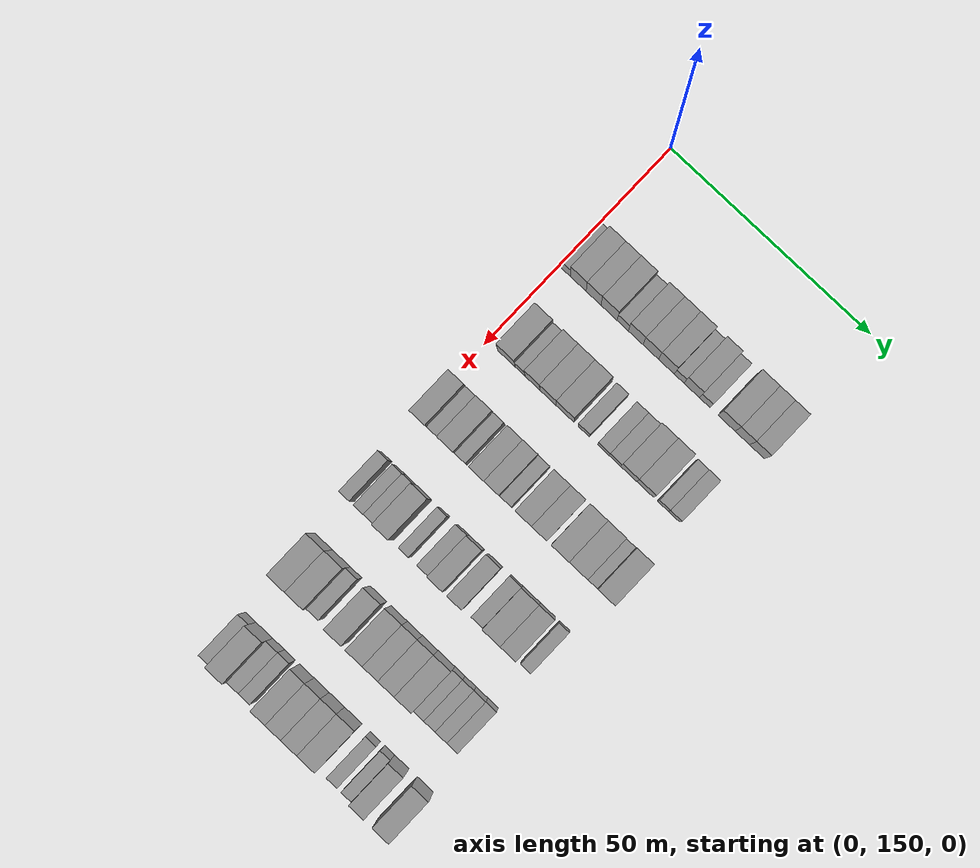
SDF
<sdf version="1.6">
 <world name="default">
  <model name="building_119">
   <static>1</static>
   <pose>25.0000 151.5702 0 0.000000 0.000000 0.000000</pose>
   <link name="link">
    <pose>0 0 3.00 0 0 0</pose>
    <collision name="collision"><geometry><box><size>10.0000 2.5258 6.0000</size></box></geometry></collision>
    <visual name="visual">
     <cast_shadows>0</cast_shadows>
     <geometry><box><size>10.0000 2.5258 6.0000</size></box></geometry>
     <material>
      <script>
       <uri>model://grey_wall/materials/scripts</uri>
       <uri>model://grey_wall/materials/textures</uri>
       <name>vrc/grey_wall</name>
      </script>
     </material>
    </visual>
   </link>
  </model>
  <model name="building_120">
   <static>1</static>
   <pose>25.0000 154.8257 0 0.000000 0.000000 0.000000</pose>
   <link name="link">
    <pose>0 0 4.50 0 0 0</pose>
    <collision name="collision"><geometry><box><size>10.0000 3.9853 9.0000</size></box></geometry></collision>
    <visual name="visual">
     <cast_shadows>0</cast_shadows>
     <geometry><box><size>10.0000 3.9853 9.0000</size></box></geometry>
     <material>
      <script>
       <uri>model://grey_wall/materials/scripts</uri>
       <uri>model://grey_wall/materials/textures</uri>
       <name>vrc/grey_wall</name>
      </script>
     </material>
    </visual>
   </link>
  </model>
  <model name="building_121">
   <static>1</static>
   <pose>25.0000 158.6795 0 0.000000 0.000000 0.000000</pose>
   <link name="link">
    <pose>0 0 4.50 0 0 0</pose>
    <collision name="collision"><geometry><box><size>10.0000 3.7222 9.0000</size></box></geometry></collision>
    <visual name="visual">
     <cast_shadows>0</cast_shadows>
     <geometry><box><size>10.0000 3.7222 9.0000</size></box></geometry>
     <material>
      <script>
       <uri>model://grey_wall/materials/scripts</uri>
       <uri>model://grey_wall/materials/textures</uri>
       <name>vrc/grey_wall</name>
      </script>
     </material>
    </visual>
   </link>
  </model>
  <model name="building_122">
   <static>1</static>
   <pose>25.0000 162.5644 0 0.000000 0.000000 0.000000</pose>
   <link name="link">
    <pose>0 0 4.50 0 0 0</pose>
    <collision name="collision"><geometry><box><size>10.0000 4.0477 9.0000</size></box></geometry></collision>
    <visual name="visual">
     <cast_shadows>0</cast_shadows>
     <geometry><box><size>10.0000 4.0477 9.0000</size></box></geometry>
     <material>
      <script>
       <uri>model://grey_wall/materials/scripts</uri>
       <uri>model://grey_wall/materials/textures</uri>
       <name>vrc/grey_wall</name>
      </script>
     </material>
    </visual>
   </link>
  </model>
  <model name="building_123">
   <static>1</static>
   <pose>25.0000 166.0023 0 0.000000 0.000000 0.000000</pose>
   <link name="link">
    <pose>0 0 3.00 0 0 0</pose>
    <collision name="collision"><geometry><box><size>10.0000 2.8281 6.0000</size></box></geometry></collision>
    <visual name="visual">
     <cast_shadows>0</cast_shadows>
     <geometry><box><size>10.0000 2.8281 6.0000</size></box></geometry>
     <material>
      <script>
       <uri>model://grey_wall/materials/scripts</uri>
       <uri>model://grey_wall/materials/textures</uri>
       <name>vrc/grey_wall</name>
      </script>
     </material>
    </visual>
   </link>
  </model>
  <model name="building_124">
   <static>1</static>
   <pose>25.0000 169.2462 0 0.000000 0.000000 0.000000</pose>
   <link name="link">
    <pose>0 0 4.50 0 0 0</pose>
    <collision name="collision"><geometry><box><size>10.0000 3.6597 9.0000</size></box></geometry></collision>
    <visual name="visual">
     <cast_shadows>0</cast_shadows>
     <geometry><box><size>10.0000 3.6597 9.0000</size></box></geometry>
     <material>
      <script>
       <uri>model://grey_wall/materials/scripts</uri>
       <uri>model://grey_wall/materials/textures</uri>
       <name>vrc/grey_wall</name>
      </script>
     </material>
    </visual>
   </link>
  </model>
  <model name="building_125">
   <static>1</static>
   <pose>25.0000 173.0243 0 0.000000 0.000000 0.000000</pose>
   <link name="link">
    <pose>0 0 4.50 0 0 0</pose>
    <collision name="collision"><geometry><box><size>10.0000 3.8966 9.0000</size></box></geometry></collision>
    <visual name="visual">
     <cast_shadows>0</cast_shadows>
     <geometry><box><size>10.0000 3.8966 9.0000</size></box></geometry>
     <material>
      <script>
       <uri>model://grey_wall/materials/scripts</uri>
       <uri>model://grey_wall/materials/textures</uri>
       <name>vrc/grey_wall</name>
      </script>
     </material>
    </visual>
   </link>
  </model>
  <model name="building_126">
   <static>1</static>
   <pose>25.0000 176.9497 0 0.000000 0.000000 0.000000</pose>
   <link name="link">
    <pose>0 0 4.50 0 0 0</pose>
    <collision name="collision"><geometry><box><size>10.0000 3.9542 9.0000</size></box></geometry></collision>
    <visual name="visual">
     <cast_shadows>0</cast_shadows>
     <geometry><box><size>10.0000 3.9542 9.0000</size></box></geometry>
     <material>
      <script>
       <uri>model://grey_wall/materials/scripts</uri>
       <uri>model://grey_wall/materials/textures</uri>
       <name>vrc/grey_wall</name>
      </script>
     </material>
    </visual>
   </link>
  </model>
  <model name="building_127">
   <static>1</static>
   <pose>25.0000 180.1447 0 0.000000 0.000000 0.000000</pose>
   <link name="link">
    <pose>0 0 3.00 0 0 0</pose>
    <collision name="collision"><geometry><box><size>10.0000 2.4359 6.0000</size></box></geometry></collision>
    <visual name="visual">
     <cast_shadows>0</cast_shadows>
     <geometry><box><size>10.0000 2.4359 6.0000</size></box></geometry>
     <material>
      <script>
       <uri>model://grey_wall/materials/scripts</uri>
       <uri>model://grey_wall/materials/textures</uri>
       <name>vrc/grey_wall</name>
      </script>
     </material>
    </visual>
   </link>
  </model>
  <model name="building_128">
   <static>1</static>
   <pose>25.0000 183.2692 0 0.000000 0.000000 0.000000</pose>
   <link name="link">
    <pose>0 0 4.50 0 0 0</pose>
    <collision name="collision"><geometry><box><size>10.0000 3.8131 9.0000</size></box></geometry></collision>
    <visual name="visual">
     <cast_shadows>0</cast_shadows>
     <geometry><box><size>10.0000 3.8131 9.0000</size></box></geometry>
     <material>
      <script>
       <uri>model://grey_wall/materials/scripts</uri>
       <uri>model://grey_wall/materials/textures</uri>
       <name>vrc/grey_wall</name>
      </script>
     </material>
    </visual>
   </link>
  </model>
  <model name="building_129">
   <static>1</static>
   <pose>25.0000 186.5135 0 0.000000 0.000000 0.000000</pose>
   <link name="link">
    <pose>0 0 3.00 0 0 0</pose>
    <collision name="collision"><geometry><box><size>10.0000 2.6755 6.0000</size></box></geometry></collision>
    <visual name="visual">
     <cast_shadows>0</cast_shadows>
     <geometry><box><size>10.0000 2.6755 6.0000</size></box></geometry>
     <material>
      <script>
       <uri>model://grey_wall/materials/scripts</uri>
       <uri>model://grey_wall/materials/textures</uri>
       <name>vrc/grey_wall</name>
      </script>
     </material>
    </visual>
   </link>
  </model>
  <model name="building_130">
   <static>1</static>
   <pose>25.0000 191.9704 0 0.000000 0.000000 0.000000</pose>
   <link name="link">
    <pose>0 0 4.50 0 0 0</pose>
    <collision name="collision"><geometry><box><size>10.0000 4.2382 9.0000</size></box></geometry></collision>
    <visual name="visual">
     <cast_shadows>0</cast_shadows>
     <geometry><box><size>10.0000 4.2382 9.0000</size></box></geometry>
     <material>
      <script>
       <uri>model://grey_wall/materials/scripts</uri>
       <uri>model://grey_wall/materials/textures</uri>
       <name>vrc/grey_wall</name>
      </script>
     </material>
    </visual>
   </link>
  </model>
  <model name="building_131">
   <static>1</static>
   <pose>25.0000 195.9133 0 0.000000 0.000000 0.000000</pose>
   <link name="link">
    <pose>0 0 4.50 0 0 0</pose>
    <collision name="collision"><geometry><box><size>10.0000 3.6477 9.0000</size></box></geometry></collision>
    <visual name="visual">
     <cast_shadows>0</cast_shadows>
     <geometry><box><size>10.0000 3.6477 9.0000</size></box></geometry>
     <material>
      <script>
       <uri>model://grey_wall/materials/scripts</uri>
       <uri>model://grey_wall/materials/textures</uri>
       <name>vrc/grey_wall</name>
      </script>
     </material>
    </visual>
   </link>
  </model>
  <model name="building_132">
   <static>1</static>
   <pose>25.0000 199.5821 0 0.000000 0.000000 0.000000</pose>
   <link name="link">
    <pose>0 0 4.50 0 0 0</pose>
    <collision name="collision"><geometry><box><size>10.0000 3.6898 9.0000</size></box></geometry></collision>
    <visual name="visual">
     <cast_shadows>0</cast_shadows>
     <geometry><box><size>10.0000 3.6898 9.0000</size></box></geometry>
     <material>
      <script>
       <uri>model://grey_wall/materials/scripts</uri>
       <uri>model://grey_wall/materials/textures</uri>
       <name>vrc/grey_wall</name>
      </script>
     </material>
    </visual>
   </link>
  </model>
  <model name="building_291">
   <static>1</static>
   <pose>44.0000 154.8033 0 0.000000 0.000000 0.000000</pose>
   <link name="link">
    <pose>0 0 4.50 0 0 0</pose>
    <collision name="collision"><geometry><box><size>10.0000 4.3918 9.0000</size></box></geometry></collision>
    <visual name="visual">
     <cast_shadows>0</cast_shadows>
     <geometry><box><size>10.0000 4.3918 9.0000</size></box></geometry>
     <material>
      <script>
       <uri>model://grey_wall/materials/scripts</uri>
       <uri>model://grey_wall/materials/textures</uri>
       <name>vrc/grey_wall</name>
      </script>
     </material>
    </visual>
   </link>
  </model>
  <model name="building_292">
   <static>1</static>
   <pose>44.0000 158.2389 0 0.000000 0.000000 0.000000</pose>
   <link name="link">
    <pose>0 0 3.00 0 0 0</pose>
    <collision name="collision"><geometry><box><size>10.0000 2.4793 6.0000</size></box></geometry></collision>
    <visual name="visual">
     <cast_shadows>0</cast_shadows>
     <geometry><box><size>10.0000 2.4793 6.0000</size></box></geometry>
     <material>
      <script>
       <uri>model://grey_wall/materials/scripts</uri>
       <uri>model://grey_wall/materials/textures</uri>
       <name>vrc/grey_wall</name>
      </script>
     </material>
    </visual>
   </link>
  </model>
  <model name="building_293">
   <static>1</static>
   <pose>44.0000 161.3177 0 0.000000 0.000000 0.000000</pose>
   <link name="link">
    <pose>0 0 4.50 0 0 0</pose>
    <collision name="collision"><geometry><box><size>10.0000 3.6782 9.0000</size></box></geometry></collision>
    <visual name="visual">
     <cast_shadows>0</cast_shadows>
     <geometry><box><size>10.0000 3.6782 9.0000</size></box></geometry>
     <material>
      <script>
       <uri>model://grey_wall/materials/scripts</uri>
       <uri>model://grey_wall/materials/textures</uri>
       <name>vrc/grey_wall</name>
      </script>
     </material>
    </visual>
   </link>
  </model>
  <model name="building_294">
   <static>1</static>
   <pose>44.0000 165.2141 0 0.000000 0.000000 0.000000</pose>
   <link name="link">
    <pose>0 0 4.50 0 0 0</pose>
    <collision name="collision"><geometry><box><size>10.0000 4.1147 9.0000</size></box></geometry></collision>
    <visual name="visual">
     <cast_shadows>0</cast_shadows>
     <geometry><box><size>10.0000 4.1147 9.0000</size></box></geometry>
     <material>
      <script>
       <uri>model://grey_wall/materials/scripts</uri>
       <uri>model://grey_wall/materials/textures</uri>
       <name>vrc/grey_wall</name>
      </script>
     </material>
    </visual>
   </link>
  </model>
  <model name="building_295">
   <static>1</static>
   <pose>44.0000 169.4779 0 0.000000 0.000000 0.000000</pose>
   <link name="link">
    <pose>0 0 4.50 0 0 0</pose>
    <collision name="collision"><geometry><box><size>10.0000 4.4129 9.0000</size></box></geometry></collision>
    <visual name="visual">
     <cast_shadows>0</cast_shadows>
     <geometry><box><size>10.0000 4.4129 9.0000</size></box></geometry>
     <material>
      <script>
       <uri>model://grey_wall/materials/scripts</uri>
       <uri>model://grey_wall/materials/textures</uri>
       <name>vrc/grey_wall</name>
      </script>
     </material>
    </visual>
   </link>
  </model>
  <model name="building_296">
   <static>1</static>
   <pose>44.0000 174.1493 0 0.000000 0.000000 0.000000</pose>
   <link name="link">
    <pose>0 0 3.00 0 0 0</pose>
    <collision name="collision"><geometry><box><size>10.0000 2.9297 6.0000</size></box></geometry></collision>
    <visual name="visual">
     <cast_shadows>0</cast_shadows>
     <geometry><box><size>10.0000 2.9297 6.0000</size></box></geometry>
     <material>
      <script>
       <uri>model://grey_wall/materials/scripts</uri>
       <uri>model://grey_wall/materials/textures</uri>
       <name>vrc/grey_wall</name>
      </script>
     </material>
    </visual>
   </link>
  </model>
  <model name="building_297">
   <static>1</static>
   <pose>44.0000 179.0630 0 0.000000 0.000000 0.000000</pose>
   <link name="link">
    <pose>0 0 3.00 0 0 0</pose>
    <collision name="collision"><geometry><box><size>10.0000 2.8978 6.0000</size></box></geometry></collision>
    <visual name="visual">
     <cast_shadows>0</cast_shadows>
     <geometry><box><size>10.0000 2.8978 6.0000</size></box></geometry>
     <material>
      <script>
       <uri>model://grey_wall/materials/scripts</uri>
       <uri>model://grey_wall/materials/textures</uri>
       <name>vrc/grey_wall</name>
      </script>
     </material>
    </visual>
   </link>
  </model>
  <model name="building_298">
   <static>1</static>
   <pose>44.0000 181.9744 0 0.000000 0.000000 0.000000</pose>
   <link name="link">
    <pose>0 0 3.00 0 0 0</pose>
    <collision name="collision"><geometry><box><size>10.0000 2.9251 6.0000</size></box></geometry></collision>
    <visual name="visual">
     <cast_shadows>0</cast_shadows>
     <geometry><box><size>10.0000 2.9251 6.0000</size></box></geometry>
     <material>
      <script>
       <uri>model://grey_wall/materials/scripts</uri>
       <uri>model://grey_wall/materials/textures</uri>
       <name>vrc/grey_wall</name>
      </script>
     </material>
    </visual>
   </link>
  </model>
  <model name="building_299">
   <static>1</static>
   <pose>44.0000 185.4060 0 0.000000 0.000000 0.000000</pose>
   <link name="link">
    <pose>0 0 4.50 0 0 0</pose>
    <collision name="collision"><geometry><box><size>10.0000 3.9381 9.0000</size></box></geometry></collision>
    <visual name="visual">
     <cast_shadows>0</cast_shadows>
     <geometry><box><size>10.0000 3.9381 9.0000</size></box></geometry>
     <material>
      <script>
       <uri>model://grey_wall/materials/scripts</uri>
       <uri>model://grey_wall/materials/textures</uri>
       <name>vrc/grey_wall</name>
      </script>
     </material>
    </visual>
   </link>
  </model>
  <model name="building_300">
   <static>1</static>
   <pose>44.0000 189.4627 0 0.000000 0.000000 0.000000</pose>
   <link name="link">
    <pose>0 0 4.50 0 0 0</pose>
    <collision name="collision"><geometry><box><size>10.0000 4.1751 9.0000</size></box></geometry></collision>
    <visual name="visual">
     <cast_shadows>0</cast_shadows>
     <geometry><box><size>10.0000 4.1751 9.0000</size></box></geometry>
     <material>
      <script>
       <uri>model://grey_wall/materials/scripts</uri>
       <uri>model://grey_wall/materials/textures</uri>
       <name>vrc/grey_wall</name>
      </script>
     </material>
    </visual>
   </link>
  </model>
  <model name="building_301">
   <static>1</static>
   <pose>44.0000 193.8861 0 0.000000 0.000000 0.000000</pose>
   <link name="link">
    <pose>0 0 3.00 0 0 0</pose>
    <collision name="collision"><geometry><box><size>10.0000 2.6716 6.0000</size></box></geometry></collision>
    <visual name="visual">
     <cast_shadows>0</cast_shadows>
     <geometry><box><size>10.0000 2.6716 6.0000</size></box></geometry>
     <material>
      <script>
       <uri>model://grey_wall/materials/scripts</uri>
       <uri>model://grey_wall/materials/textures</uri>
       <name>vrc/grey_wall</name>
      </script>
     </material>
    </visual>
   </link>
  </model>
  <model name="building_302">
   <static>1</static>
   <pose>44.0000 196.6618 0 0.000000 0.000000 0.000000</pose>
   <link name="link">
    <pose>0 0 3.00 0 0 0</pose>
    <collision name="collision"><geometry><box><size>10.0000 2.8798 6.0000</size></box></geometry></collision>
    <visual name="visual">
     <cast_shadows>0</cast_shadows>
     <geometry><box><size>10.0000 2.8798 6.0000</size></box></geometry>
     <material>
      <script>
       <uri>model://grey_wall/materials/scripts</uri>
       <uri>model://grey_wall/materials/textures</uri>
       <name>vrc/grey_wall</name>
      </script>
     </material>
    </visual>
   </link>
  </model>
  <model name="building_473">
   <static>1</static>
   <pose>63.0000 151.5348 0 0.000000 0.000000 0.000000</pose>
   <link name="link">
    <pose>0 0 4.50 0 0 0</pose>
    <collision name="collision"><geometry><box><size>10.0000 3.8464 9.0000</size></box></geometry></collision>
    <visual name="visual">
     <cast_shadows>0</cast_shadows>
     <geometry><box><size>10.0000 3.8464 9.0000</size></box></geometry>
     <material>
      <script>
       <uri>model://grey_wall/materials/scripts</uri>
       <uri>model://grey_wall/materials/textures</uri>
       <name>vrc/grey_wall</name>
      </script>
     </material>
    </visual>
   </link>
  </model>
  <model name="building_474">
   <static>1</static>
   <pose>63.0000 154.8927 0 0.000000 0.000000 0.000000</pose>
   <link name="link">
    <pose>0 0 3.00 0 0 0</pose>
    <collision name="collision"><geometry><box><size>10.0000 2.8694 6.0000</size></box></geometry></collision>
    <visual name="visual">
     <cast_shadows>0</cast_shadows>
     <geometry><box><size>10.0000 2.8694 6.0000</size></box></geometry>
     <material>
      <script>
       <uri>model://grey_wall/materials/scripts</uri>
       <uri>model://grey_wall/materials/textures</uri>
       <name>vrc/grey_wall</name>
      </script>
     </material>
    </visual>
   </link>
  </model>
  <model name="building_475">
   <static>1</static>
   <pose>63.0000 158.3019 0 0.000000 0.000000 0.000000</pose>
   <link name="link">
    <pose>0 0 4.50 0 0 0</pose>
    <collision name="collision"><geometry><box><size>10.0000 3.9490 9.0000</size></box></geometry></collision>
    <visual name="visual">
     <cast_shadows>0</cast_shadows>
     <geometry><box><size>10.0000 3.9490 9.0000</size></box></geometry>
     <material>
      <script>
       <uri>model://grey_wall/materials/scripts</uri>
       <uri>model://grey_wall/materials/textures</uri>
       <name>vrc/grey_wall</name>
      </script>
     </material>
    </visual>
   </link>
  </model>
  <model name="building_476">
   <static>1</static>
   <pose>63.0000 161.6331 0 0.000000 0.000000 0.000000</pose>
   <link name="link">
    <pose>0 0 3.00 0 0 0</pose>
    <collision name="collision"><geometry><box><size>10.0000 2.7133 6.0000</size></box></geometry></collision>
    <visual name="visual">
     <cast_shadows>0</cast_shadows>
     <geometry><box><size>10.0000 2.7133 6.0000</size></box></geometry>
     <material>
      <script>
       <uri>model://grey_wall/materials/scripts</uri>
       <uri>model://grey_wall/materials/textures</uri>
       <name>vrc/grey_wall</name>
      </script>
     </material>
    </visual>
   </link>
  </model>
  <model name="building_477">
   <static>1</static>
   <pose>63.0000 165.8572 0 0.000000 0.000000 0.000000</pose>
   <link name="link">
    <pose>0 0 4.50 0 0 0</pose>
    <collision name="collision"><geometry><box><size>10.0000 3.7349 9.0000</size></box></geometry></collision>
    <visual name="visual">
     <cast_shadows>0</cast_shadows>
     <geometry><box><size>10.0000 3.7349 9.0000</size></box></geometry>
     <material>
      <script>
       <uri>model://grey_wall/materials/scripts</uri>
       <uri>model://grey_wall/materials/textures</uri>
       <name>vrc/grey_wall</name>
      </script>
     </material>
    </visual>
   </link>
  </model>
  <model name="building_478">
   <static>1</static>
   <pose>63.0000 169.5671 0 0.000000 0.000000 0.000000</pose>
   <link name="link">
    <pose>0 0 4.50 0 0 0</pose>
    <collision name="collision"><geometry><box><size>10.0000 3.6849 9.0000</size></box></geometry></collision>
    <visual name="visual">
     <cast_shadows>0</cast_shadows>
     <geometry><box><size>10.0000 3.6849 9.0000</size></box></geometry>
     <material>
      <script>
       <uri>model://grey_wall/materials/scripts</uri>
       <uri>model://grey_wall/materials/textures</uri>
       <name>vrc/grey_wall</name>
      </script>
     </material>
    </visual>
   </link>
  </model>
  <model name="building_479">
   <static>1</static>
   <pose>63.0000 172.8339 0 0.000000 0.000000 0.000000</pose>
   <link name="link">
    <pose>0 0 3.00 0 0 0</pose>
    <collision name="collision"><geometry><box><size>10.0000 2.8489 6.0000</size></box></geometry></collision>
    <visual name="visual">
     <cast_shadows>0</cast_shadows>
     <geometry><box><size>10.0000 2.8489 6.0000</size></box></geometry>
     <material>
      <script>
       <uri>model://grey_wall/materials/scripts</uri>
       <uri>model://grey_wall/materials/textures</uri>
       <name>vrc/grey_wall</name>
      </script>
     </material>
    </visual>
   </link>
  </model>
  <model name="building_480">
   <static>1</static>
   <pose>63.0000 177.2797 0 0.000000 0.000000 0.000000</pose>
   <link name="link">
    <pose>0 0 4.50 0 0 0</pose>
    <collision name="collision"><geometry><box><size>10.0000 4.0426 9.0000</size></box></geometry></collision>
    <visual name="visual">
     <cast_shadows>0</cast_shadows>
     <geometry><box><size>10.0000 4.0426 9.0000</size></box></geometry>
     <material>
      <script>
       <uri>model://grey_wall/materials/scripts</uri>
       <uri>model://grey_wall/materials/textures</uri>
       <name>vrc/grey_wall</name>
      </script>
     </material>
    </visual>
   </link>
  </model>
  <model name="building_481">
   <static>1</static>
   <pose>63.0000 181.1511 0 0.000000 0.000000 0.000000</pose>
   <link name="link">
    <pose>0 0 4.50 0 0 0</pose>
    <collision name="collision"><geometry><box><size>10.0000 3.7003 9.0000</size></box></geometry></collision>
    <visual name="visual">
     <cast_shadows>0</cast_shadows>
     <geometry><box><size>10.0000 3.7003 9.0000</size></box></geometry>
     <material>
      <script>
       <uri>model://grey_wall/materials/scripts</uri>
       <uri>model://grey_wall/materials/textures</uri>
       <name>vrc/grey_wall</name>
      </script>
     </material>
    </visual>
   </link>
  </model>
  <model name="building_482">
   <static>1</static>
   <pose>63.0000 186.1853 0 0.000000 0.000000 0.000000</pose>
   <link name="link">
    <pose>0 0 4.50 0 0 0</pose>
    <collision name="collision"><geometry><box><size>10.0000 4.3681 9.0000</size></box></geometry></collision>
    <visual name="visual">
     <cast_shadows>0</cast_shadows>
     <geometry><box><size>10.0000 4.3681 9.0000</size></box></geometry>
     <material>
      <script>
       <uri>model://grey_wall/materials/scripts</uri>
       <uri>model://grey_wall/materials/textures</uri>
       <name>vrc/grey_wall</name>
      </script>
     </material>
    </visual>
   </link>
  </model>
  <model name="building_483">
   <static>1</static>
   <pose>63.0000 190.6072 0 0.000000 0.000000 0.000000</pose>
   <link name="link">
    <pose>0 0 4.50 0 0 0</pose>
    <collision name="collision"><geometry><box><size>10.0000 4.4756 9.0000</size></box></geometry></collision>
    <visual name="visual">
     <cast_shadows>0</cast_shadows>
     <geometry><box><size>10.0000 4.4756 9.0000</size></box></geometry>
     <material>
      <script>
       <uri>model://grey_wall/materials/scripts</uri>
       <uri>model://grey_wall/materials/textures</uri>
       <name>vrc/grey_wall</name>
      </script>
     </material>
    </visual>
   </link>
  </model>
  <model name="building_484">
   <static>1</static>
   <pose>63.0000 194.0667 0 0.000000 0.000000 0.000000</pose>
   <link name="link">
    <pose>0 0 3.00 0 0 0</pose>
    <collision name="collision"><geometry><box><size>10.0000 2.4434 6.0000</size></box></geometry></collision>
    <visual name="visual">
     <cast_shadows>0</cast_shadows>
     <geometry><box><size>10.0000 2.4434 6.0000</size></box></geometry>
     <material>
      <script>
       <uri>model://grey_wall/materials/scripts</uri>
       <uri>model://grey_wall/materials/textures</uri>
       <name>vrc/grey_wall</name>
      </script>
     </material>
    </visual>
   </link>
  </model>
  <model name="building_485">
   <static>1</static>
   <pose>63.0000 197.3970 0 0.000000 0.000000 0.000000</pose>
   <link name="link">
    <pose>0 0 4.50 0 0 0</pose>
    <collision name="collision"><geometry><box><size>10.0000 4.2172 9.0000</size></box></geometry></collision>
    <visual name="visual">
     <cast_shadows>0</cast_shadows>
     <geometry><box><size>10.0000 4.2172 9.0000</size></box></geometry>
     <material>
      <script>
       <uri>model://grey_wall/materials/scripts</uri>
       <uri>model://grey_wall/materials/textures</uri>
       <name>vrc/grey_wall</name>
      </script>
     </material>
    </visual>
   </link>
  </model>
  <model name="building_651">
   <static>1</static>
   <pose>82.0000 151.3153 0 0.000000 0.000000 0.000000</pose>
   <link name="link">
    <pose>0 0 3.00 0 0 0</pose>
    <collision name="collision"><geometry><box><size>10.0000 2.5799 6.0000</size></box></geometry></collision>
    <visual name="visual">
     <cast_shadows>0</cast_shadows>
     <geometry><box><size>10.0000 2.5799 6.0000</size></box></geometry>
     <material>
      <script>
       <uri>model://grey_wall/materials/scripts</uri>
       <uri>model://grey_wall/materials/textures</uri>
       <name>vrc/grey_wall</name>
      </script>
     </material>
    </visual>
   </link>
  </model>
  <model name="building_652">
   <static>1</static>
   <pose>82.0000 154.8153 0 0.000000 0.000000 0.000000</pose>
   <link name="link">
    <pose>0 0 3.00 0 0 0</pose>
    <collision name="collision"><geometry><box><size>10.0000 2.4201 6.0000</size></box></geometry></collision>
    <visual name="visual">
     <cast_shadows>0</cast_shadows>
     <geometry><box><size>10.0000 2.4201 6.0000</size></box></geometry>
     <material>
      <script>
       <uri>model://grey_wall/materials/scripts</uri>
       <uri>model://grey_wall/materials/textures</uri>
       <name>vrc/grey_wall</name>
      </script>
     </material>
    </visual>
   </link>
  </model>
  <model name="building_653">
   <static>1</static>
   <pose>82.0000 157.3307 0 0.000000 0.000000 0.000000</pose>
   <link name="link">
    <pose>0 0 3.00 0 0 0</pose>
    <collision name="collision"><geometry><box><size>10.0000 2.6108 6.0000</size></box></geometry></collision>
    <visual name="visual">
     <cast_shadows>0</cast_shadows>
     <geometry><box><size>10.0000 2.6108 6.0000</size></box></geometry>
     <material>
      <script>
       <uri>model://grey_wall/materials/scripts</uri>
       <uri>model://grey_wall/materials/textures</uri>
       <name>vrc/grey_wall</name>
      </script>
     </material>
    </visual>
   </link>
  </model>
  <model name="building_654">
   <static>1</static>
   <pose>82.0000 160.6524 0 0.000000 0.000000 0.000000</pose>
   <link name="link">
    <pose>0 0 4.50 0 0 0</pose>
    <collision name="collision"><geometry><box><size>10.0000 4.0326 9.0000</size></box></geometry></collision>
    <visual name="visual">
     <cast_shadows>0</cast_shadows>
     <geometry><box><size>10.0000 4.0326 9.0000</size></box></geometry>
     <material>
      <script>
       <uri>model://grey_wall/materials/scripts</uri>
       <uri>model://grey_wall/materials/textures</uri>
       <name>vrc/grey_wall</name>
      </script>
     </material>
    </visual>
   </link>
  </model>
  <model name="building_655">
   <static>1</static>
   <pose>82.0000 165.8984 0 0.000000 0.000000 0.000000</pose>
   <link name="link">
    <pose>0 0 3.00 0 0 0</pose>
    <collision name="collision"><geometry><box><size>10.0000 2.4593 6.0000</size></box></geometry></collision>
    <visual name="visual">
     <cast_shadows>0</cast_shadows>
     <geometry><box><size>10.0000 2.4593 6.0000</size></box></geometry>
     <material>
      <script>
       <uri>model://grey_wall/materials/scripts</uri>
       <uri>model://grey_wall/materials/textures</uri>
       <name>vrc/grey_wall</name>
      </script>
     </material>
    </visual>
   </link>
  </model>
  <model name="building_656">
   <static>1</static>
   <pose>82.0000 170.5735 0 0.000000 0.000000 0.000000</pose>
   <link name="link">
    <pose>0 0 3.00 0 0 0</pose>
    <collision name="collision"><geometry><box><size>10.0000 2.8910 6.0000</size></box></geometry></collision>
    <visual name="visual">
     <cast_shadows>0</cast_shadows>
     <geometry><box><size>10.0000 2.8910 6.0000</size></box></geometry>
     <material>
      <script>
       <uri>model://grey_wall/materials/scripts</uri>
       <uri>model://grey_wall/materials/textures</uri>
       <name>vrc/grey_wall</name>
      </script>
     </material>
    </visual>
   </link>
  </model>
  <model name="building_657">
   <static>1</static>
   <pose>82.0000 173.9270 0 0.000000 0.000000 0.000000</pose>
   <link name="link">
    <pose>0 0 4.50 0 0 0</pose>
    <collision name="collision"><geometry><box><size>10.0000 3.8159 9.0000</size></box></geometry></collision>
    <visual name="visual">
     <cast_shadows>0</cast_shadows>
     <geometry><box><size>10.0000 3.8159 9.0000</size></box></geometry>
     <material>
      <script>
       <uri>model://grey_wall/materials/scripts</uri>
       <uri>model://grey_wall/materials/textures</uri>
       <name>vrc/grey_wall</name>
      </script>
     </material>
    </visual>
   </link>
  </model>
  <model name="building_658">
   <static>1</static>
   <pose>82.0000 178.6359 0 0.000000 0.000000 0.000000</pose>
   <link name="link">
    <pose>0 0 4.50 0 0 0</pose>
    <collision name="collision"><geometry><box><size>10.0000 3.6019 9.0000</size></box></geometry></collision>
    <visual name="visual">
     <cast_shadows>0</cast_shadows>
     <geometry><box><size>10.0000 3.6019 9.0000</size></box></geometry>
     <material>
      <script>
       <uri>model://grey_wall/materials/scripts</uri>
       <uri>model://grey_wall/materials/textures</uri>
       <name>vrc/grey_wall</name>
      </script>
     </material>
    </visual>
   </link>
  </model>
  <model name="building_659">
   <static>1</static>
   <pose>82.0000 183.8973 0 0.000000 0.000000 0.000000</pose>
   <link name="link">
    <pose>0 0 3.00 0 0 0</pose>
    <collision name="collision"><geometry><box><size>10.0000 2.9209 6.0000</size></box></geometry></collision>
    <visual name="visual">
     <cast_shadows>0</cast_shadows>
     <geometry><box><size>10.0000 2.9209 6.0000</size></box></geometry>
     <material>
      <script>
       <uri>model://grey_wall/materials/scripts</uri>
       <uri>model://grey_wall/materials/textures</uri>
       <name>vrc/grey_wall</name>
      </script>
     </material>
    </visual>
   </link>
  </model>
  <model name="building_660">
   <static>1</static>
   <pose>82.0000 187.5350 0 0.000000 0.000000 0.000000</pose>
   <link name="link">
    <pose>0 0 4.50 0 0 0</pose>
    <collision name="collision"><geometry><box><size>10.0000 4.3546 9.0000</size></box></geometry></collision>
    <visual name="visual">
     <cast_shadows>0</cast_shadows>
     <geometry><box><size>10.0000 4.3546 9.0000</size></box></geometry>
     <material>
      <script>
       <uri>model://grey_wall/materials/scripts</uri>
       <uri>model://grey_wall/materials/textures</uri>
       <name>vrc/grey_wall</name>
      </script>
     </material>
    </visual>
   </link>
  </model>
  <model name="building_661">
   <static>1</static>
   <pose>82.0000 191.6063 0 0.000000 0.000000 0.000000</pose>
   <link name="link">
    <pose>0 0 4.50 0 0 0</pose>
    <collision name="collision"><geometry><box><size>10.0000 3.7879 9.0000</size></box></geometry></collision>
    <visual name="visual">
     <cast_shadows>0</cast_shadows>
     <geometry><box><size>10.0000 3.7879 9.0000</size></box></geometry>
     <material>
      <script>
       <uri>model://grey_wall/materials/scripts</uri>
       <uri>model://grey_wall/materials/textures</uri>
       <name>vrc/grey_wall</name>
      </script>
     </material>
    </visual>
   </link>
  </model>
  <model name="building_662">
   <static>1</static>
   <pose>82.0000 195.7701 0 0.000000 0.000000 0.000000</pose>
   <link name="link">
    <pose>0 0 3.00 0 0 0</pose>
    <collision name="collision"><geometry><box><size>10.0000 2.5397 6.0000</size></box></geometry></collision>
    <visual name="visual">
     <cast_shadows>0</cast_shadows>
     <geometry><box><size>10.0000 2.5397 6.0000</size></box></geometry>
     <material>
      <script>
       <uri>model://grey_wall/materials/scripts</uri>
       <uri>model://grey_wall/materials/textures</uri>
       <name>vrc/grey_wall</name>
      </script>
     </material>
    </visual>
   </link>
  </model>
  <model name="building_820">
   <static>1</static>
   <pose>101.0000 153.5932 0 0.000000 0.000000 0.000000</pose>
   <link name="link">
    <pose>0 0 4.50 0 0 0</pose>
    <collision name="collision"><geometry><box><size>10.0000 4.4238 9.0000</size></box></geometry></collision>
    <visual name="visual">
     <cast_shadows>0</cast_shadows>
     <geometry><box><size>10.0000 4.4238 9.0000</size></box></geometry>
     <material>
      <script>
       <uri>model://grey_wall/materials/scripts</uri>
       <uri>model://grey_wall/materials/textures</uri>
       <name>vrc/grey_wall</name>
      </script>
     </material>
    </visual>
   </link>
  </model>
  <model name="building_821">
   <static>1</static>
   <pose>101.0000 158.0451 0 0.000000 0.000000 0.000000</pose>
   <link name="link">
    <pose>0 0 4.50 0 0 0</pose>
    <collision name="collision"><geometry><box><size>10.0000 4.4801 9.0000</size></box></geometry></collision>
    <visual name="visual">
     <cast_shadows>0</cast_shadows>
     <geometry><box><size>10.0000 4.4801 9.0000</size></box></geometry>
     <material>
      <script>
       <uri>model://grey_wall/materials/scripts</uri>
       <uri>model://grey_wall/materials/textures</uri>
       <name>vrc/grey_wall</name>
      </script>
     </material>
    </visual>
   </link>
  </model>
  <model name="building_822">
   <static>1</static>
   <pose>101.0000 161.7510 0 0.000000 0.000000 0.000000</pose>
   <link name="link">
    <pose>0 0 3.00 0 0 0</pose>
    <collision name="collision"><geometry><box><size>10.0000 2.9317 6.0000</size></box></geometry></collision>
    <visual name="visual">
     <cast_shadows>0</cast_shadows>
     <geometry><box><size>10.0000 2.9317 6.0000</size></box></geometry>
     <material>
      <script>
       <uri>model://grey_wall/materials/scripts</uri>
       <uri>model://grey_wall/materials/textures</uri>
       <name>vrc/grey_wall</name>
      </script>
     </material>
    </visual>
   </link>
  </model>
  <model name="building_823">
   <static>1</static>
   <pose>101.0000 167.3357 0 0.000000 0.000000 0.000000</pose>
   <link name="link">
    <pose>0 0 4.50 0 0 0</pose>
    <collision name="collision"><geometry><box><size>10.0000 4.2379 9.0000</size></box></geometry></collision>
    <visual name="visual">
     <cast_shadows>0</cast_shadows>
     <geometry><box><size>10.0000 4.2379 9.0000</size></box></geometry>
     <material>
      <script>
       <uri>model://grey_wall/materials/scripts</uri>
       <uri>model://grey_wall/materials/textures</uri>
       <name>vrc/grey_wall</name>
      </script>
     </material>
    </visual>
   </link>
  </model>
  <model name="building_824">
   <static>1</static>
   <pose>101.0000 172.5386 0 0.000000 0.000000 0.000000</pose>
   <link name="link">
    <pose>0 0 4.50 0 0 0</pose>
    <collision name="collision"><geometry><box><size>10.0000 4.1678 9.0000</size></box></geometry></collision>
    <visual name="visual">
     <cast_shadows>0</cast_shadows>
     <geometry><box><size>10.0000 4.1678 9.0000</size></box></geometry>
     <material>
      <script>
       <uri>model://grey_wall/materials/scripts</uri>
       <uri>model://grey_wall/materials/textures</uri>
       <name>vrc/grey_wall</name>
      </script>
     </material>
    </visual>
   </link>
  </model>
  <model name="building_825">
   <static>1</static>
   <pose>101.0000 176.4904 0 0.000000 0.000000 0.000000</pose>
   <link name="link">
    <pose>0 0 4.50 0 0 0</pose>
    <collision name="collision"><geometry><box><size>10.0000 3.7358 9.0000</size></box></geometry></collision>
    <visual name="visual">
     <cast_shadows>0</cast_shadows>
     <geometry><box><size>10.0000 3.7358 9.0000</size></box></geometry>
     <material>
      <script>
       <uri>model://grey_wall/materials/scripts</uri>
       <uri>model://grey_wall/materials/textures</uri>
       <name>vrc/grey_wall</name>
      </script>
     </material>
    </visual>
   </link>
  </model>
  <model name="building_826">
   <static>1</static>
   <pose>101.0000 180.3145 0 0.000000 0.000000 0.000000</pose>
   <link name="link">
    <pose>0 0 4.50 0 0 0</pose>
    <collision name="collision"><geometry><box><size>10.0000 3.9123 9.0000</size></box></geometry></collision>
    <visual name="visual">
     <cast_shadows>0</cast_shadows>
     <geometry><box><size>10.0000 3.9123 9.0000</size></box></geometry>
     <material>
      <script>
       <uri>model://grey_wall/materials/scripts</uri>
       <uri>model://grey_wall/materials/textures</uri>
       <name>vrc/grey_wall</name>
      </script>
     </material>
    </visual>
   </link>
  </model>
  <model name="building_827">
   <static>1</static>
   <pose>101.0000 184.3753 0 0.000000 0.000000 0.000000</pose>
   <link name="link">
    <pose>0 0 4.50 0 0 0</pose>
    <collision name="collision"><geometry><box><size>10.0000 4.2092 9.0000</size></box></geometry></collision>
    <visual name="visual">
     <cast_shadows>0</cast_shadows>
     <geometry><box><size>10.0000 4.2092 9.0000</size></box></geometry>
     <material>
      <script>
       <uri>model://grey_wall/materials/scripts</uri>
       <uri>model://grey_wall/materials/textures</uri>
       <name>vrc/grey_wall</name>
      </script>
     </material>
    </visual>
   </link>
  </model>
  <model name="building_828">
   <static>1</static>
   <pose>101.0000 187.7420 0 0.000000 0.000000 0.000000</pose>
   <link name="link">
    <pose>0 0 3.00 0 0 0</pose>
    <collision name="collision"><geometry><box><size>10.0000 2.5242 6.0000</size></box></geometry></collision>
    <visual name="visual">
     <cast_shadows>0</cast_shadows>
     <geometry><box><size>10.0000 2.5242 6.0000</size></box></geometry>
     <material>
      <script>
       <uri>model://grey_wall/materials/scripts</uri>
       <uri>model://grey_wall/materials/textures</uri>
       <name>vrc/grey_wall</name>
      </script>
     </material>
    </visual>
   </link>
  </model>
  <model name="building_829">
   <static>1</static>
   <pose>101.0000 190.3833 0 0.000000 0.000000 0.000000</pose>
   <link name="link">
    <pose>0 0 3.00 0 0 0</pose>
    <collision name="collision"><geometry><box><size>10.0000 2.7584 6.0000</size></box></geometry></collision>
    <visual name="visual">
     <cast_shadows>0</cast_shadows>
     <geometry><box><size>10.0000 2.7584 6.0000</size></box></geometry>
     <material>
      <script>
       <uri>model://grey_wall/materials/scripts</uri>
       <uri>model://grey_wall/materials/textures</uri>
       <name>vrc/grey_wall</name>
      </script>
     </material>
    </visual>
   </link>
  </model>
  <model name="building_830">
   <static>1</static>
   <pose>101.0000 193.2138 0 0.000000 0.000000 0.000000</pose>
   <link name="link">
    <pose>0 0 3.00 0 0 0</pose>
    <collision name="collision"><geometry><box><size>10.0000 2.9027 6.0000</size></box></geometry></collision>
    <visual name="visual">
     <cast_shadows>0</cast_shadows>
     <geometry><box><size>10.0000 2.9027 6.0000</size></box></geometry>
     <material>
      <script>
       <uri>model://grey_wall/materials/scripts</uri>
       <uri>model://grey_wall/materials/textures</uri>
       <name>vrc/grey_wall</name>
      </script>
     </material>
    </visual>
   </link>
  </model>
  <model name="building_831">
   <static>1</static>
   <pose>101.0000 195.9693 0 0.000000 0.000000 0.000000</pose>
   <link name="link">
    <pose>0 0 3.00 0 0 0</pose>
    <collision name="collision"><geometry><box><size>10.0000 2.6083 6.0000</size></box></geometry></collision>
    <visual name="visual">
     <cast_shadows>0</cast_shadows>
     <geometry><box><size>10.0000 2.6083 6.0000</size></box></geometry>
     <material>
      <script>
       <uri>model://grey_wall/materials/scripts</uri>
       <uri>model://grey_wall/materials/textures</uri>
       <name>vrc/grey_wall</name>
      </script>
     </material>
    </visual>
   </link>
  </model>
  <model name="building_1001">
   <static>1</static>
   <pose>120.0000 153.4242 0 0.000000 0.000000 0.000000</pose>
   <link name="link">
    <pose>0 0 3.00 0 0 0</pose>
    <collision name="collision"><geometry><box><size>10.0000 2.6205 6.0000</size></box></geometry></collision>
    <visual name="visual">
     <cast_shadows>0</cast_shadows>
     <geometry><box><size>10.0000 2.6205 6.0000</size></box></geometry>
     <material>
      <script>
       <uri>model://grey_wall/materials/scripts</uri>
       <uri>model://grey_wall/materials/textures</uri>
       <name>vrc/grey_wall</name>
      </script>
     </material>
    </visual>
   </link>
  </model>
  <model name="building_1002">
   <static>1</static>
   <pose>120.0000 156.8607 0 0.000000 0.000000 0.000000</pose>
   <link name="link">
    <pose>0 0 4.50 0 0 0</pose>
    <collision name="collision"><geometry><box><size>10.0000 4.2526 9.0000</size></box></geometry></collision>
    <visual name="visual">
     <cast_shadows>0</cast_shadows>
     <geometry><box><size>10.0000 4.2526 9.0000</size></box></geometry>
     <material>
      <script>
       <uri>model://grey_wall/materials/scripts</uri>
       <uri>model://grey_wall/materials/textures</uri>
       <name>vrc/grey_wall</name>
      </script>
     </material>
    </visual>
   </link>
  </model>
  <model name="building_1003">
   <static>1</static>
   <pose>120.0000 160.4581 0 0.000000 0.000000 0.000000</pose>
   <link name="link">
    <pose>0 0 3.00 0 0 0</pose>
    <collision name="collision"><geometry><box><size>10.0000 2.9421 6.0000</size></box></geometry></collision>
    <visual name="visual">
     <cast_shadows>0</cast_shadows>
     <geometry><box><size>10.0000 2.9421 6.0000</size></box></geometry>
     <material>
      <script>
       <uri>model://grey_wall/materials/scripts</uri>
       <uri>model://grey_wall/materials/textures</uri>
       <name>vrc/grey_wall</name>
      </script>
     </material>
    </visual>
   </link>
  </model>
  <model name="building_1004">
   <static>1</static>
   <pose>120.0000 163.3260 0 0.000000 0.000000 0.000000</pose>
   <link name="link">
    <pose>0 0 3.00 0 0 0</pose>
    <collision name="collision"><geometry><box><size>10.0000 2.7939 6.0000</size></box></geometry></collision>
    <visual name="visual">
     <cast_shadows>0</cast_shadows>
     <geometry><box><size>10.0000 2.7939 6.0000</size></box></geometry>
     <material>
      <script>
       <uri>model://grey_wall/materials/scripts</uri>
       <uri>model://grey_wall/materials/textures</uri>
       <name>vrc/grey_wall</name>
      </script>
     </material>
    </visual>
   </link>
  </model>
  <model name="building_1005">
   <static>1</static>
   <pose>120.0000 167.5364 0 0.000000 0.000000 0.000000</pose>
   <link name="link">
    <pose>0 0 4.50 0 0 0</pose>
    <collision name="collision"><geometry><box><size>10.0000 3.6268 9.0000</size></box></geometry></collision>
    <visual name="visual">
     <cast_shadows>0</cast_shadows>
     <geometry><box><size>10.0000 3.6268 9.0000</size></box></geometry>
     <material>
      <script>
       <uri>model://grey_wall/materials/scripts</uri>
       <uri>model://grey_wall/materials/textures</uri>
       <name>vrc/grey_wall</name>
      </script>
     </material>
    </visual>
   </link>
  </model>
  <model name="building_1006">
   <static>1</static>
   <pose>120.0000 171.2504 0 0.000000 0.000000 0.000000</pose>
   <link name="link">
    <pose>0 0 4.50 0 0 0</pose>
    <collision name="collision"><geometry><box><size>10.0000 3.8013 9.0000</size></box></geometry></collision>
    <visual name="visual">
     <cast_shadows>0</cast_shadows>
     <geometry><box><size>10.0000 3.8013 9.0000</size></box></geometry>
     <material>
      <script>
       <uri>model://grey_wall/materials/scripts</uri>
       <uri>model://grey_wall/materials/textures</uri>
       <name>vrc/grey_wall</name>
      </script>
     </material>
    </visual>
   </link>
  </model>
  <model name="building_1007">
   <static>1</static>
   <pose>120.0000 175.0822 0 0.000000 0.000000 0.000000</pose>
   <link name="link">
    <pose>0 0 4.50 0 0 0</pose>
    <collision name="collision"><geometry><box><size>10.0000 3.8623 9.0000</size></box></geometry></collision>
    <visual name="visual">
     <cast_shadows>0</cast_shadows>
     <geometry><box><size>10.0000 3.8623 9.0000</size></box></geometry>
     <material>
      <script>
       <uri>model://grey_wall/materials/scripts</uri>
       <uri>model://grey_wall/materials/textures</uri>
       <name>vrc/grey_wall</name>
      </script>
     </material>
    </visual>
   </link>
  </model>
  <model name="building_1008">
   <static>1</static>
   <pose>120.0000 179.1979 0 0.000000 0.000000 0.000000</pose>
   <link name="link">
    <pose>0 0 4.50 0 0 0</pose>
    <collision name="collision"><geometry><box><size>10.0000 4.3691 9.0000</size></box></geometry></collision>
    <visual name="visual">
     <cast_shadows>0</cast_shadows>
     <geometry><box><size>10.0000 4.3691 9.0000</size></box></geometry>
     <material>
      <script>
       <uri>model://grey_wall/materials/scripts</uri>
       <uri>model://grey_wall/materials/textures</uri>
       <name>vrc/grey_wall</name>
      </script>
     </material>
    </visual>
   </link>
  </model>
  <model name="building_1009">
   <static>1</static>
   <pose>120.0000 184.6997 0 0.000000 0.000000 0.000000</pose>
   <link name="link">
    <pose>0 0 3.00 0 0 0</pose>
    <collision name="collision"><geometry><box><size>10.0000 2.6345 6.0000</size></box></geometry></collision>
    <visual name="visual">
     <cast_shadows>0</cast_shadows>
     <geometry><box><size>10.0000 2.6345 6.0000</size></box></geometry>
     <material>
      <script>
       <uri>model://grey_wall/materials/scripts</uri>
       <uri>model://grey_wall/materials/textures</uri>
       <name>vrc/grey_wall</name>
      </script>
     </material>
    </visual>
   </link>
  </model>
  <model name="building_1010">
   <static>1</static>
   <pose>120.0000 188.2547 0 0.000000 0.000000 0.000000</pose>
   <link name="link">
    <pose>0 0 3.00 0 0 0</pose>
    <collision name="collision"><geometry><box><size>10.0000 2.4757 6.0000</size></box></geometry></collision>
    <visual name="visual">
     <cast_shadows>0</cast_shadows>
     <geometry><box><size>10.0000 2.4757 6.0000</size></box></geometry>
     <material>
      <script>
       <uri>model://grey_wall/materials/scripts</uri>
       <uri>model://grey_wall/materials/textures</uri>
       <name>vrc/grey_wall</name>
      </script>
     </material>
    </visual>
   </link>
  </model>
  <model name="building_1011">
   <static>1</static>
   <pose>120.0000 191.3037 0 0.000000 0.000000 0.000000</pose>
   <link name="link">
    <pose>0 0 4.50 0 0 0</pose>
    <collision name="collision"><geometry><box><size>10.0000 3.6222 9.0000</size></box></geometry></collision>
    <visual name="visual">
     <cast_shadows>0</cast_shadows>
     <geometry><box><size>10.0000 3.6222 9.0000</size></box></geometry>
     <material>
      <script>
       <uri>model://grey_wall/materials/scripts</uri>
       <uri>model://grey_wall/materials/textures</uri>
       <name>vrc/grey_wall</name>
      </script>
     </material>
    </visual>
   </link>
  </model>
  <model name="building_1012">
   <static>1</static>
   <pose>120.0000 197.1499 0 0.000000 0.000000 0.000000</pose>
   <link name="link">
    <pose>0 0 4.50 0 0 0</pose>
    <collision name="collision"><geometry><box><size>10.0000 4.0701 9.0000</size></box></geometry></collision>
    <visual name="visual">
     <cast_shadows>0</cast_shadows>
     <geometry><box><size>10.0000 4.0701 9.0000</size></box></geometry>
     <material>
      <script>
       <uri>model://grey_wall/materials/scripts</uri>
       <uri>model://grey_wall/materials/textures</uri>
       <name>vrc/grey_wall</name>
      </script>
     </material>
    </visual>
   </link>
  </model>
 </world>
</sdf>
